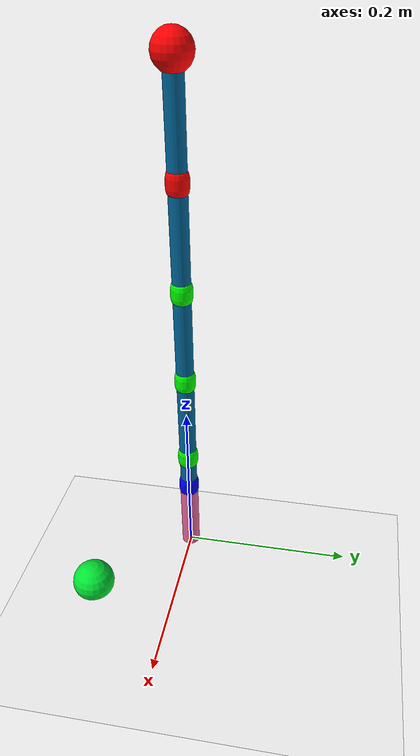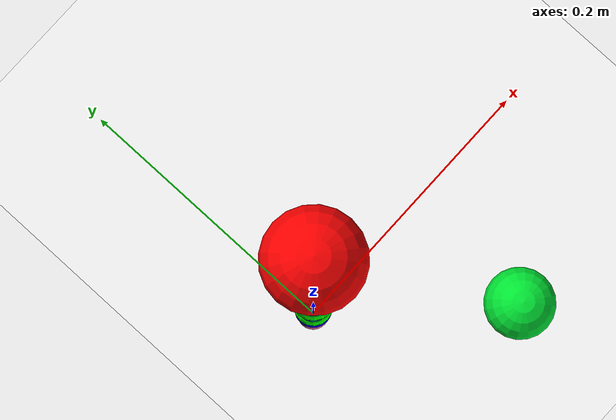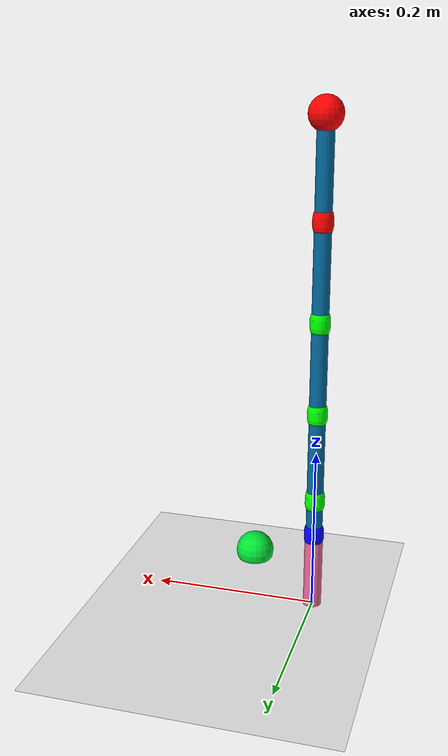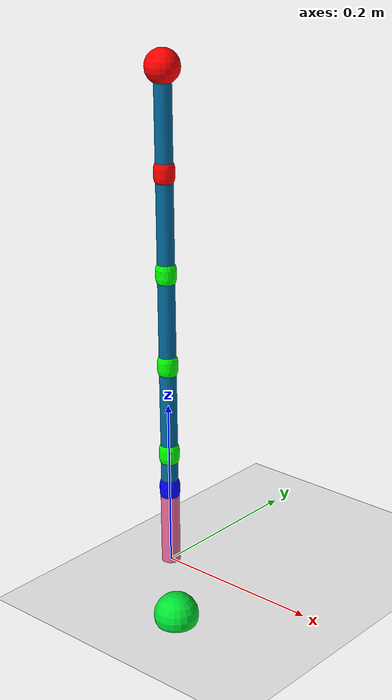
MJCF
<mujoco model="marrtino_arm">
    <custom>
        <numeric name="ndims" size="1" data="3"/>
        <numeric name="njoints" size="1" data="5"/>
    </custom>

	<compiler angle="radian" inertiafromgeom="true"/>

    <default>
		<joint armature="1" damping="1" limited="true"/>
		<geom contype="0" friction="1 0.1 0.1" rgba="0.7 0.7 0 1"/>
	</default>

    <option gravity="0 0 -9.81" integrator="RK4" timestep="0.01"/>

    <worldbody>
		<!-- Arena -->
		<geom conaffinity="0" contype="0" name="ground" pos="0 0 0" rgba="0.98 0.98 0.98 1" size="1 1 10" type="plane"/>

		<!-- Arm -->
		<geom conaffinity="0" contype="0" fromto="0 0 0 0 0 0.09" name="root" rgba="0.9 0.4 0.6 1" size=".011" type="cylinder"/>
		<body name="base" pos="0 0 .09">
			<geom fromto="0 0 0 0 0 0.045" name="link0" rgba="0.0 0.4 0.6 1" size=".01" type="capsule"/>
			<joint axis="0 0 1" limited="true" range="-1.5707963267948966 1.5707963267948966" name="j0" pos="0 0 0" type="hinge"/>
            <geom fromto="0 0 0 0 0 0.01" name="jcolor0" rgba="0.0 0.0 1.0 1" size=".012" type="capsule"/>

            <body name="j0" pos="0 0 0.045">
				<geom fromto="0 0 0 0 0 0.11" name="link1" rgba="0.0 0.4 0.6 1" size=".01" type="capsule"/>
                <joint axis="0 1 0" limited="true" range="-1.5707963267948966 1.5707963267948966" name="j1" pos="0 0 0" type="hinge"/>
                <geom fromto="0 0 0 0 0 0.01" name="jcolor1" rgba="0.0 1.0 0.0 1" size=".012" type="capsule"/>

                <body name="j1" pos="0 0 0.11">
                    <geom fromto="0 0 0 0 0 0.11" name="link2" rgba="0.0 0.4 0.6 1" size=".01" type="capsule"/>
                    <joint axis="0 1 0" limited="true" range="-1.5707963267948966 1.5707963267948966" name="j2" pos="0 0 0" type="hinge"/>
                    <geom fromto="0 0 0 0 0 0.01" name="jcolor2" rgba="0.0 1.0 0.0 1" size=".012" type="capsule"/>

                    <body name="j2" pos="0 0 0.11">
                        <geom fromto="0 0 0 0 0 0.115" name="link3" rgba="0.0 0.4 0.6 1" size=".01" type="capsule"/>
                        <joint axis="0 1 0" limited="true" range="-1.5707963267948966 1.5707963267948966" name="j3" pos="0 0 0" type="hinge"/>
                        <geom fromto="0 0 0 0 0 0.01" name="jcolor3" rgba="0.0 1.0 0.0 1" size=".012" type="capsule"/>

                        <body name="j3" pos="0 0 0.115">
                            <geom fromto="0 0 0 0 0 0.12" name="link4" rgba="   0.0 0.4 0.6 1" size=".01" type="capsule"/>
                            <joint axis="1 0 0" limited="true" range="-1.5707963267948966 1.5707963267948966" name="j4" pos="0 0 0" type="hinge"/>
                            <geom fromto="0 0 0 0 0 0.01" name="jcolor4" rgba="1.0 0.0 0.0 1" size=".012" type="capsule"/>

                            <body name="fingertip" pos="0 0 0.12">
                                <geom contype="0" name="fingertip" pos="0 0 0" rgba="0.99 0.0 0.0 1" size=".02" type="sphere"/>
                            </body>
                        </body>
                    </body>
                </body>
			</body>
        </body>

		<!-- Target -->
		<body name="target" pos=".1 -.1 .01" gravcomp="1">
			<joint armature="0" axis="1 0 0" damping="0" limited="false" name="target_x" pos="0 0 0" type="slide"/>
			<joint armature="0" axis="0 1 0" damping="0" limited="false" name="target_y" pos="0 0 0" type="slide"/>
			<joint armature="0" axis="0 0 1" damping="0" limited="false" name="target_z" pos="0 0 0" type="slide"/>
			<geom conaffinity="0" contype="0" name="target" pos="0 0 0" rgba="0.0 0.9 0.2 1" size=".025" type="sphere"/>
		</body>
	</worldbody>

    <actuator>
		<motor ctrllimited="true" ctrlrange="-1.0 1.0" gear="200.0" joint="j0"/>
		<motor ctrllimited="true" ctrlrange="-1.0 1.0" gear="200.0" joint="j1"/>
		<motor ctrllimited="true" ctrlrange="-1.0 1.0" gear="200.0" joint="j2"/>
		<motor ctrllimited="true" ctrlrange="-1.0 1.0" gear="200.0" joint="j3"/>
		<motor ctrllimited="true" ctrlrange="-1.0 1.0" gear="200.0" joint="j4"/>
	</actuator>
</mujoco>
